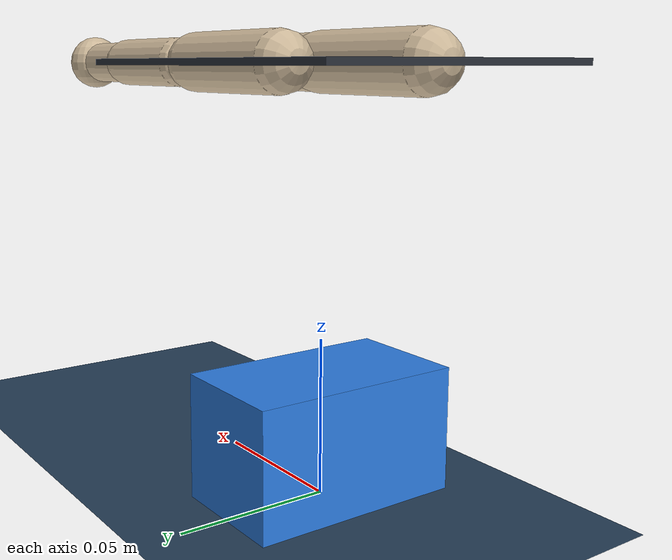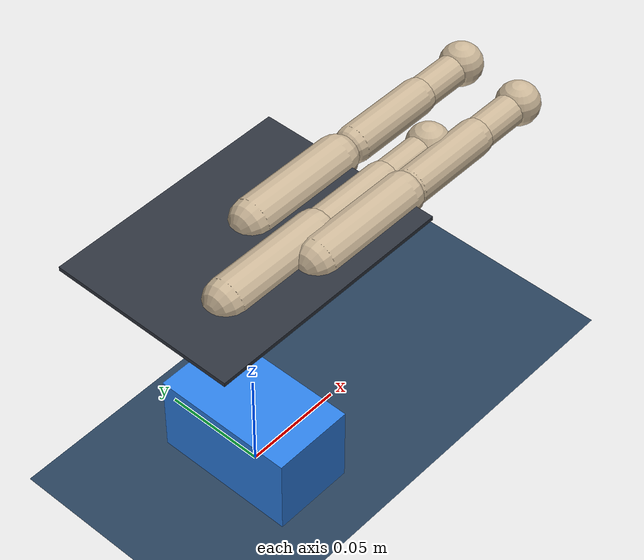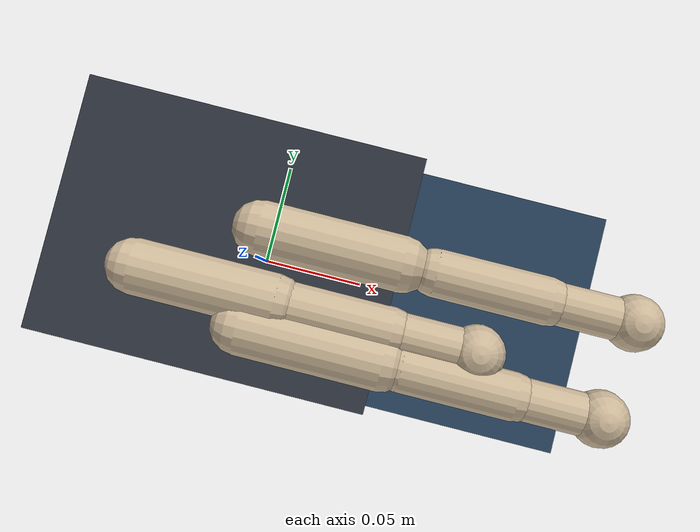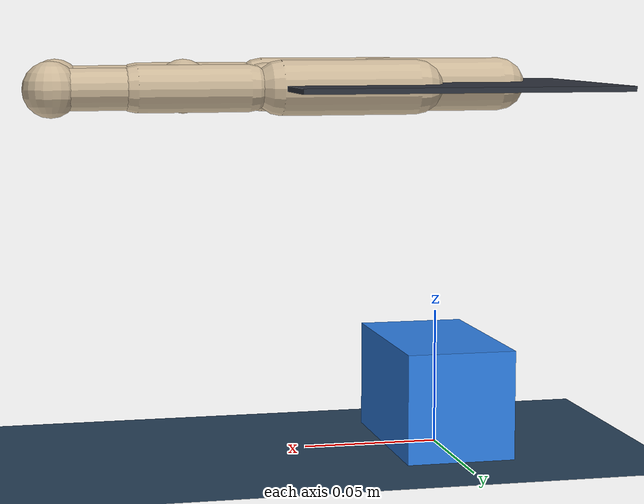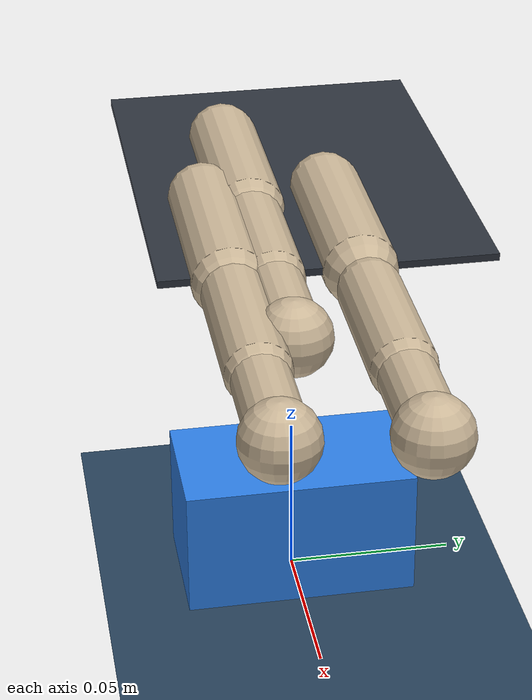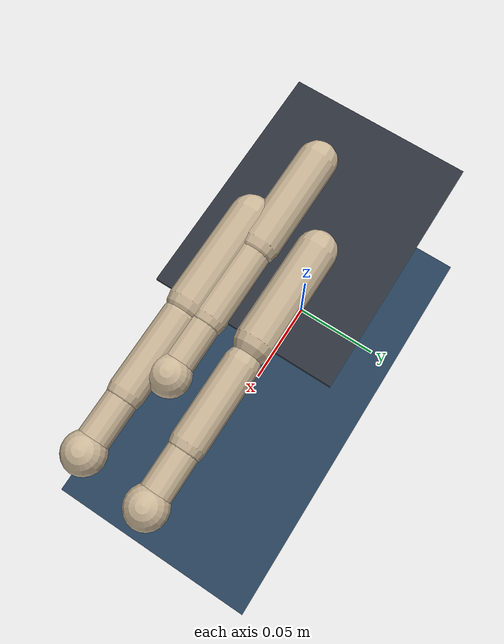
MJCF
<mujoco model="scene_prism3_tp0d0019p0d0127p0d0006_ip0d0106n0d0222p0d0116_mp0d0117p0d0035p0d0065">
  <compiler angle="radian" autolimits="true" />
  <option timestep="0.002" gravity="0 0 -9.81" integrator="implicitfast" />
  <visual>
    <headlight ambient=".4 .4 .4" diffuse=".8 .8 .8" specular="0.1 0.1 0.1" />
    <map znear=".01" />
    <quality shadowsize="2048" />
    <global elevation="-15" />
  </visual>
  <default>
    <geom friction="1.8 0.15 0.01" solref="0.006 1" solimp="0.97 0.995 0.0005" />
    <motor ctrlrange="-1 1" ctrllimited="true" />
    <default class="pose">
      <joint damping="2.0" armature="0.01" />
      <position kp="4000" kv="100" forcerange="-1000 1000" />
    </default>
    <default class="ctrl">
      <joint damping="0.5" armature="0.001" />
      <position kp="30" kv="0.5" gear="1" forcerange="-10 10" ctrlrange="-1 1" />
    </default>
  </default>
  <asset>
    <texture type="skybox" builtin="gradient" rgb1="0.3 0.5 0.7" rgb2="0 0 0" width="512" height="3072" />
    <texture type="2d" name="groundplane" builtin="checker" mark="edge" rgb1="0.2 0.3 0.4" rgb2="0.1 0.2 0.3" markrgb="0.8 0.8 0.8" width="300" height="300" />
    <material name="groundplane" texture="groundplane" texuniform="true" texrepeat="5 5" reflectance="0.2" />
    <texture name="grid" type="2d" builtin="checker" rgb1="0.15 0.15 0.15" rgb2="0.25 0.25 0.25" width="256" height="256" />
    <material name="table_mat" texture="grid" texrepeat="3 3" reflectance="0.2" />
    <material name="palm_mat" rgba="0.18 0.2 0.24 1" />
    <material name="finger_mat" rgba="0.8 0.72 0.6 1" />
    <material name="object_mat" rgba="0.18 0.5 0.9 1" />
  </asset>
  <worldbody>
    <light pos="0 0 1.5" dir="0 0 -1" directional="true" diffuse=".6 .6 .6" specular=".2 .2 .2" />
    <light pos="0.5 0.5 1.0" dir="-1 -1 -1" directional="true" diffuse=".4 .4 .4" specular=".1 .1 .1" />
    <geom name="floor" type="plane" size="1.5 1.5 0.1" material="groundplane" />
    <body name="cube" pos="0.000000 0.000000 0.020000">
      <freejoint />
      <geom type="box" size="0.020000 0.035000 0.020000" density="500" material="object_mat" friction="2.4 0.2 0.02" />
    </body>
    <body gravcomp="1" name="palm_pose" pos="0 0 0.134">
      <joint class="pose" name="palm_px" type="slide" axis="1 0 0" range="-0.20 0.20" />
      <joint class="pose" name="palm_py" type="slide" axis="0 1 0" range="-0.20 0.20" />
      <joint class="pose" name="palm_pz" type="slide" axis="0 0 1" range="-0.15 0.35" />
      <joint class="pose" name="palm_rx" type="hinge" axis="1 0 0" range="-1.57 1.57" />
      <joint class="pose" name="palm_ry" type="hinge" axis="0 1 0" range="-1.57 1.57" />
      <joint class="pose" name="palm_rz" type="hinge" axis="0 0 1" range="-3.14 3.14" />
      <geom type="box" size="0.06 0.045 0.001" material="palm_mat" />
      <body name="thumb_mount" pos="-0.02812 -0.015341 0">
        <inertial pos="0 0 0" mass="0.001" diaginertia="1e-6 1e-6 1e-6" />
        <body name="thumb_yaw_frame">
          <inertial pos="0 0 0" mass="0.001" diaginertia="1e-6 1e-6 1e-6" />
          <joint class="ctrl" name="thumb_yaw" type="hinge" axis="1 0 0" range="-1.1 1.1" />
          <body name="thumb_mcp_frame">
            <joint class="ctrl" name="thumb_mcp" type="hinge" axis="0 1 0" range="0 3.14" />
            <geom type="capsule" fromto="0 0 0 0.05 0 0" size="0.010" material="finger_mat" />
            <body name="thumb_len_frame" pos="0.050625 0 0">
              <geom type="capsule" fromto="0 0 0 0.04 0 0" size="0.0085" material="finger_mat" />
              <body name="thumb_pip_frame" pos="0.04 0 0">
                <joint class="ctrl" name="thumb_pip" type="hinge" axis="0 1 0" range="-1.2 0.5" />
                <geom type="capsule" fromto="0 0 0 0.03 0 0" size="0.0075" material="finger_mat" />
                <body name="thumb_tip" pos="0.03 0 0">
                  <geom type="sphere" size="0.010" material="finger_mat" friction="2.4 0.2 0.02" />
                  <geom type="sphere" pos="0 0.004 0" size="0.005" material="finger_mat" friction="2.4 0.2 0.02" />
                  <geom type="sphere" pos="0 -0.004 0" size="0.005" material="finger_mat" friction="2.4 0.2 0.02" />
                </body>
              </body>
            </body>
          </body>
        </body>
      </body>
      <body name="index_mount" pos="0.010562 0.007834 0">
        <inertial pos="0 0 0" mass="0.001" diaginertia="1e-6 1e-6 1e-6" />
        <body name="index_yaw_frame">
          <inertial pos="0 0 0" mass="0.001" diaginertia="1e-6 1e-6 1e-6" />
          <joint class="ctrl" name="index_yaw" type="hinge" axis="1 0 0" range="-1.1 1.1" />
          <body name="index_mcp_frame">
            <joint class="ctrl" name="index_mcp" type="hinge" axis="0 1 0" range="0 2.5" />
            <geom type="capsule" fromto="0 0 0 0.05 0 0" size="0.010" material="finger_mat" />
            <body name="index_len_frame" pos="0.061567 0 0">
              <geom type="capsule" fromto="0 0 0 0.04 0 0" size="0.0085" material="finger_mat" />
              <body name="index_pip_frame" pos="0.04 0 0">
                <joint class="ctrl" name="index_pip" type="hinge" axis="0 1 0" range="-1.2 1.57" />
                <geom type="capsule" fromto="0 0 0 0.03 0 0" size="0.0075" material="finger_mat" />
                <body name="index_tip" pos="0.03 0 0">
                  <geom type="sphere" size="0.010" material="finger_mat" friction="2.4 0.2 0.02" />
                  <geom type="sphere" pos="0 0.004 0" size="0.005" material="finger_mat" friction="2.4 0.2 0.02" />
                  <geom type="sphere" pos="0 -0.004 0" size="0.005" material="finger_mat" friction="2.4 0.2 0.02" />
                </body>
              </body>
            </body>
          </body>
        </body>
      </body>
      <body name="middle_mount" pos="0.011713 -0.026546 0">
        <inertial pos="0 0 0" mass="0.001" diaginertia="1e-6 1e-6 1e-6" />
        <body name="middle_yaw_frame">
          <inertial pos="0 0 0" mass="0.001" diaginertia="1e-6 1e-6 1e-6" />
          <joint class="ctrl" name="middle_yaw" type="hinge" axis="1 0 0" range="-1.1 1.1" />
          <body name="middle_mcp_frame">
            <joint class="ctrl" name="middle_mcp" type="hinge" axis="0 1 0" range="0 2.5" />
            <geom type="capsule" fromto="0 0 0 0.05 0 0" size="0.010" material="finger_mat" />
            <body name="middle_len_frame" pos="0.056544 0 0">
              <geom type="capsule" fromto="0 0 0 0.04 0 0" size="0.0085" material="finger_mat" />
              <body name="middle_pip_frame" pos="0.04 0 0">
                <joint class="ctrl" name="middle_pip" type="hinge" axis="0 1 0" range="-1.2 1.57" />
                <geom type="capsule" fromto="0 0 0 0.03 0 0" size="0.0075" material="finger_mat" />
                <body name="middle_tip" pos="0.03 0 0">
                  <geom type="sphere" size="0.010" material="finger_mat" friction="2.4 0.2 0.02" />
                  <geom type="sphere" pos="0 0.004 0" size="0.005" material="finger_mat" friction="2.4 0.2 0.02" />
                  <geom type="sphere" pos="0 -0.004 0" size="0.005" material="finger_mat" friction="2.4 0.2 0.02" />
                </body>
              </body>
            </body>
          </body>
        </body>
      </body>
    </body>
  </worldbody>
  <actuator>
    <position class="pose" name="a_palm_px" joint="palm_px" ctrlrange="-0.20 0.20" />
    <position class="pose" name="a_palm_py" joint="palm_py" ctrlrange="-0.20 0.20" />
    <position class="pose" name="a_palm_pz" joint="palm_pz" ctrlrange="-0.15 0.35" />
    <position class="pose" name="a_palm_rx" joint="palm_rx" ctrlrange="-1.57 1.57" />
    <position class="pose" name="a_palm_ry" joint="palm_ry" ctrlrange="-1.57 1.57" />
    <position class="pose" name="a_palm_rz" joint="palm_rz" ctrlrange="-3.14 3.14" />
    <position class="ctrl" name="a_thumb_yaw" joint="thumb_yaw" ctrlrange="-1.1 1.1" />
    <position class="ctrl" name="a_thumb_mcp" joint="thumb_mcp" ctrlrange="0 3.14" />
    <position class="ctrl" name="a_thumb_pip" joint="thumb_pip" ctrlrange="-1.2 0.5" />
    <position class="ctrl" name="a_index_yaw" joint="index_yaw" ctrlrange="-1.1 1.1" />
    <position class="ctrl" name="a_index_mcp" joint="index_mcp" ctrlrange="0 2.5" />
    <position class="ctrl" name="a_index_pip" joint="index_pip" ctrlrange="-1.2 1.57" />
    <position class="ctrl" name="a_middle_yaw" joint="middle_yaw" ctrlrange="-1.1 1.1" />
    <position class="ctrl" name="a_middle_mcp" joint="middle_mcp" ctrlrange="0 2.5" />
    <position class="ctrl" name="a_middle_pip" joint="middle_pip" ctrlrange="-1.2 1.57" />
  </actuator>
  <keyframe>
    <key name="open" qpos="&#10;        0 0 0.02 1 0 0 0 0.02 0 0 0 0 0 0 2 -0.707 0 1.25 1 0 1.25 1&#10;      " ctrl="&#10;        0.02 0 0 0 0 0 0 2 -0.707 0 1.25 1 0 1.25 1&#10;      " />
    <key name="foundational" qpos="&#10;        0.03054789482 -0.002759783668 0.02315831985 0.8670165779 0.02988602071 0.05584977895 -0.4942366656 0.02003114756 -4.321285951e-06 -0.0004605530381 4.169518876e-06 -1.425976543e-06 4.690012411e-07 0.2593640161 1.64039769 -0.8844707566 -0.2602543918 1.213392904 1.00313977 -0.1521872638 1.497861674 0.9436834686&#10;      " ctrl="&#10;        0.02 0 0 0 0 0 0.03553291745 1.32321825 -0.9476119845 -0.08169951305 1.455147395 1.057456362 -0.1119712718 1.563058739 0.9555793853&#10;      " />
  </keyframe>
</mujoco>
